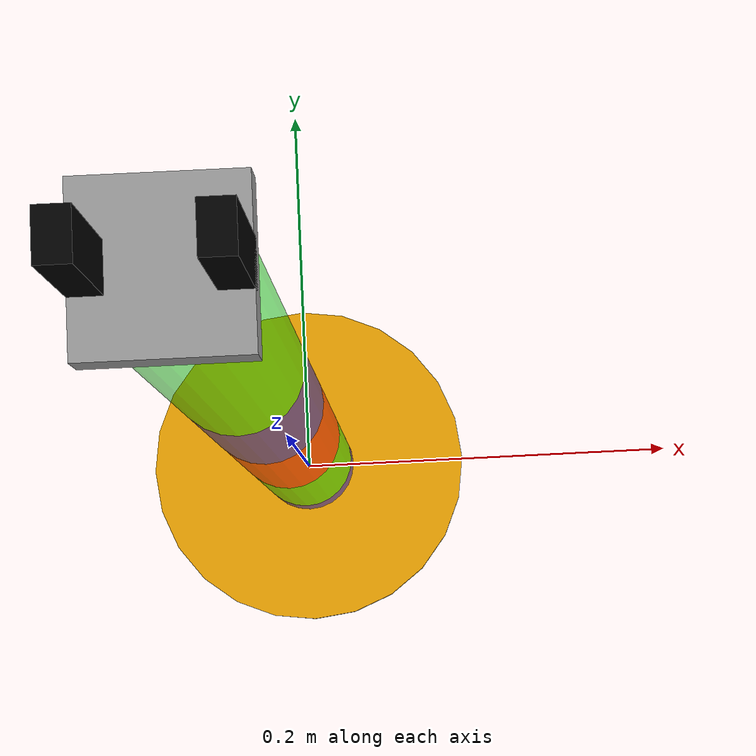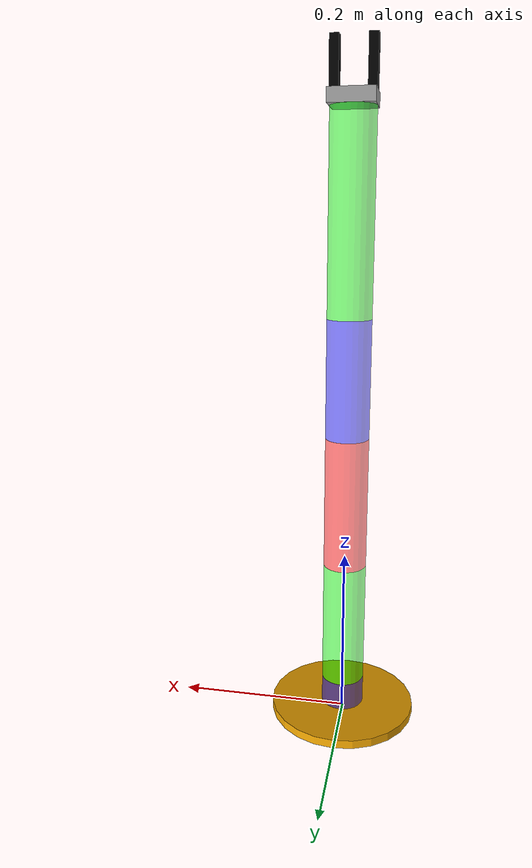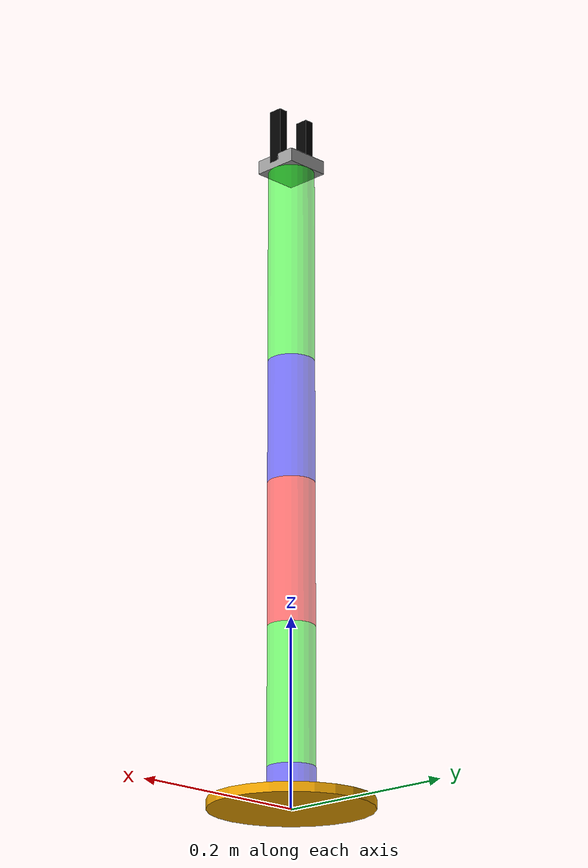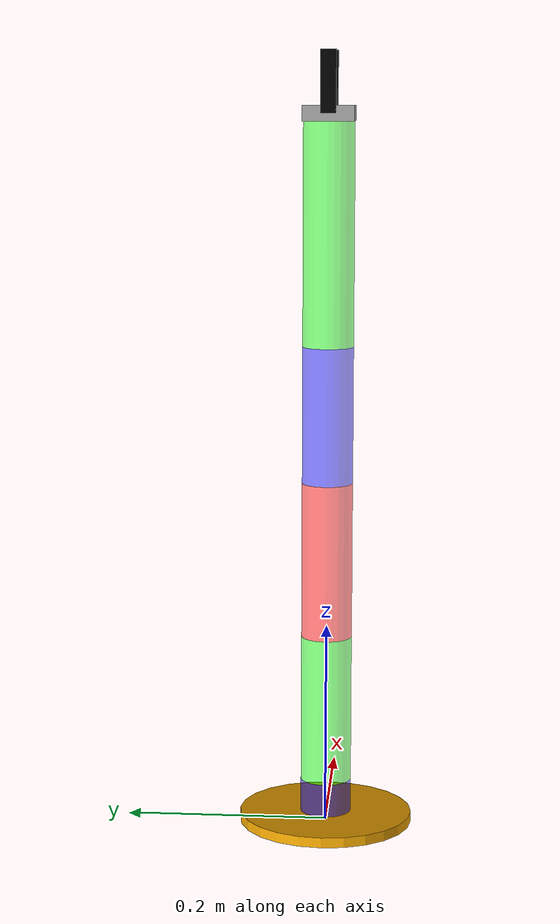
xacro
<?xml version="1.0"?>

<robot name="arm" xmlns:xacro="http://www.ros.org/wiki/xacro">
    <xacro:include filename="$(find kuka_youbot)/xacro/variables.xacro" />

    <link name="base">
        <visual>
            <geometry>
                <cylinder radius="${base_radius}" length="${base_length}"/>
            </geometry>
            <origin xyz="0 0 ${base_length/2}"/>
        </visual>
    </link>

    <joint name="j1" type="revolute">
            <parent link= "base"/>
            <child link="link1"/>
            <origin xyz="0 0 ${base_length}"/>
            <limit effort="100" velocity="${joint1_velocity}" lower="${joint1_min_limit}" upper="${joint1_max_limit}"/>
            <axis xyz="0 0 1"/>
    </joint>

    <link name="link1">
        <visual>
            <geometry>
                <cylinder radius="${link1_radius}" length="${link1_length}"/>
            </geometry>
            <origin xyz="0 0 ${link1_length/2}"/>
            <material name="blue">
                <color rgba="0 0 1 0.5"/>
            </material>
      0  </visual>
    </link>

    <joint name="j2" type="revolute">
        <parent link= "link1"/>
        <child link="link2"/>
        <origin xyz="0 0 ${link1_length}" rpy="-1.5702 -1.5702 0"/>
        <limit effort="100" velocity="${joint2_velocity}" lower="${joint2_min_limit}" upper="${joint2_max_limit}"/>
        <axis xyz="0 0 1"/>
    </joint>

    <link name="link2">
        <visual>
            <geometry>
                <cylinder radius="${link2_radius}" length="${link2_length}"/>
            </geometry>
            <origin xyz="${link2_length/2} 0 0" rpy="0 1.5702 0"/>
            <material name="green">
                <color rgba="0 1 0 0.5"/>
            </material>
        </visual>
    </link>
<joint name="j3" type="revolute">
        <parent link= "link2"/>
        <child link="link3"/>
        <origin xyz="${link2_length} 0 0" rpy="0 0 0"/>
        <limit effort="100" velocity="${joint3_velocity}" lower="${joint3_min_limit}" upper="${joint3_max_limit}"/>
        <axis xyz="0 0 1"/>
    </joint>

    <link name="link3">
        <visual>
            <geometry>
                <cylinder radius="${link3_radius}" length="${link3_length}"/>
            </geometry>
            <origin xyz="${link3_length/2} 0 0" rpy="0 1.5702 0"/>
            <material name="red">
                <color rgba="1 0 0 0.5"/>
            </material>
        </visual>
    </link>

    <joint name="j4" type="revolute">
        <parent link= "link3"/>
        <child link="link4"/>
        <origin xyz="${link3_length} 0 0 "/>
        <limit effort="100" velocity="${joint4_velocity}" lower="${joint4_min_limit}" upper="${joint4_max_limit}"/>
        <axis xyz="0 0 1"/>
    </joint>

    <link name="link4">
        <visual>
            <geometry>
                <cylinder radius="${link4_radius}" length="${link4_length}"/>
            </geometry>
            <origin xyz="${link4_length/2} 0 0" rpy="0 1.5702 0"/>
            <material name="blue"/>
        </visual>
    </link>

    <joint name="j5" type="revolute">
        <parent link= "link4"/>
        <child link="link5"/>
        <origin xyz="${link4_length} 0 0" rpy="0 1.5702 0"/>
        <limit effort="100" velocity="${joint5_velocity}" lower="${joint5_min_limit}" upper="${joint5_max_limit}"/>
        <axis xyz="1 0 0"/>
    </joint>

    <link name="link5">
        <visual>
            <geometry>
                <cylinder radius="${link5_radius}" length="${link5_length}"/>
            </geometry>
            <origin xyz="0 0 ${link5_length/2}" rpy="0 0 0"/>
            <material name="green"/>
        </visual>
    </link>
       <!-- Gripper base connected to link5 -->

    <joint name="gripper_joint" type="fixed">
        <parent link="link5"/>
        <child link="gripper_base"/>
        <origin xyz="0 0 ${link5_length}" rpy="0 0 1.57"/>
    </joint>

    <link name="gripper_base">
        <visual>
            <geometry>
                <box size="${gripper_base_length} ${gripper_base_width} ${gripper_base_height}"/>
            </geometry>
            <origin xyz="0 0 ${gripper_base_height/2}"/>
            <material name="gray">
                <color rgba="0.6 0.6 0.6 1.0"/>
            </material>
        </visual>
    </link>
    <!-- Left Finger -->

    <joint name="left_finger_joint" type="prismatic">
        <parent link="gripper_base"/>
        <child link="left_finger"/>
        <origin xyz="${-gripper_base_length/2} 0 ${gripper_base_height/2}"/>
        <axis xyz="1 0 0"/>
        <limit effort="10" velocity="0.01" lower="${Finger_min_limit}" upper="${Finger_max_limit}"/>
    </joint>

    <link name="left_finger">
        <visual>
            <geometry>
                <box size="${Finger_length} ${Finger_width} ${Finger_height}"/>
            </geometry>
            <origin xyz="${Finger_length/2} 0 ${Finger_height/2}"/>
            <material name="black">
                <color rgba="0 0 0 1"/>
            </material>
        </visual>
    </link>

    <!-- Right Finger -->
    <joint name="right_finger_joint" type="prismatic">
        <parent link="gripper_base"/>
        <child link="right_finger"/>
        <origin xyz="${gripper_base_length/2} 0 ${gripper_base_height/2}"/>
        <axis xyz="-1 0 0"/>
        <limit effort="10" velocity="0.01" lower="${Finger_min_limit}" upper="${Finger_max_limit}"/>
        <mimic joint="left_finger_joint" multiplier="1.0" offset="0"/>
    </joint>

    <link name="right_finger">
        <visual>
            <geometry>
                <box size="${Finger_length} ${Finger_width} ${Finger_height}"/>
            </geometry>
            <origin xyz="${-Finger_length/2} 0 ${Finger_height/2}"/>
            <material name="black"/>
        </visual>
    </link>

</robot>

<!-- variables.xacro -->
<robot name="variables" xmlns:xacro="http://www.ros.org/wiki/xacro">

    <xacro:property name="PI" value="3.14"/>

    <!--                     ARM                 -->

    <xacro:property name="base_length" value="0.01"/>
    <xacro:property name="base_radius" value="0.086"/>
    <xacro:property name="shifted_base_to_arm" value="0.150"/>

    <xacro:property name="link1_length" value="0.033"/> <!-- meter -->
    <xacro:property name="link1_radius" value="0.025"/>
    <xacro:property name="joint1_max_limit" value="2.95"/> <!-- rad -->
    <xacro:property name="joint1_min_limit" value="-2.95"/>
    <xacro:property name="joint1_velocity" value="1.57"/> <!-- rad/s-->

    <xacro:property name="link2_length" value="0.147"/>
    <xacro:property name="link2_radius" value="0.025"/>
    <xacro:property name="joint2_max_limit" value="1.57"/>
    <xacro:property name="joint2_min_limit" value="-1.13"/>
    <xacro:property name="joint2_velocity" value="1.57"/>

    <xacro:property name="link3_length" value="0.155"/>
    <xacro:property name="link3_radius" value="0.025"/>
    <xacro:property name="joint3_max_limit" value="2.55"/>
    <xacro:property name="joint3_min_limit" value="-2.64"/>
    <xacro:property name="joint3_velocity" value="1.57"/>

    <xacro:property name="link4_length" value="0.135"/>
    <xacro:property name="link4_radius" value="0.025"/>
    <xacro:property name="joint4_max_limit" value="1.78"/>
    <xacro:property name="joint4_min_limit" value="-1.78"/>
    <xacro:property name="joint4_velocity" value="1.57"/>

    <xacro:property name="link5_length" value="0.2175"/>
    <xacro:property name="link5_radius" value="0.025"/>
    <xacro:property name="joint5_max_limit" value="2.91"/>
    <xacro:property name="joint5_min_limit" value="-2.91"/>
    <xacro:property name="joint5_velocity" value="1.57"/>

    <!--                     Gribber                -->

    <xacro:property name="gripper_base_width" value="0.05 "/>
    <xacro:property name="gripper_base_length" value="0.05 "/>
    <xacro:property name="gripper_base_height" value="0.015 "/>

    <!--                     Finger               -->

    <xacro:property name="Finger_length" value="0.01 "/>
    <xacro:property name="Finger_width" value="0.015"/>
    <xacro:property name="Finger_height" value="0.06 "/>
    <xacro:property name="Finger_max_limit" value="0.0125"/>
    <xacro:property name="Finger_min_limit" value="0.0"/>

    <!--                    BASE                 -->

    <xacro:property name="base_box_length" value="0.580"/>
    <xacro:property name="base_box_width" value="0.376"/>
    <xacro:property name="base_box_height" value="0.110"/>
    <xacro:property name="base_clearance" value="0.030"/>
    <xacro:property name="base_scale" value="0.001"/>
    <xacro:property name="scale_factor" value="0.6"/>
    <xacro:property name="base_speed" value="0.8"/>
    <xacro:property name="base_weight" value="20"/> <!-- kg -->
    <xacro:property name="base_payload" value="20"/> <!-- kg -->

    <xacro:property name="default_mass" value="1.0"/>
    <xacro:property name="default_ixx" value="0.01"/>
    <xacro:property name="default_iyy" value="0.01"/>
    <xacro:property name="default_izz" value="0.01"/>

</robot>
